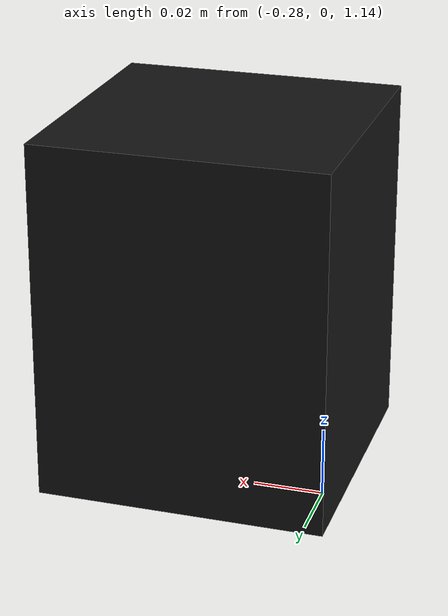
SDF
<?xml version="1.0" ?>
<sdf version="1.6">
  <model name="table_camera">
    <static>true</static>

    <link name="camera_link">
      <pose>-0.25 0 1.20 0 1.5707963 0</pose>

      <visual name="camera_body">
        <geometry>
          <box><size>0.10 0.08 0.08</size></box>
        </geometry>
        <material>
          <ambient>0.08 0.08 0.08 1</ambient>
          <diffuse>0.08 0.08 0.08 1</diffuse>
        </material>
      </visual>

      <sensor name="table_camera" type="camera">
        <always_on>true</always_on>
        <visualize>true</visualize>
        <update_rate>15</update_rate>

        <camera>
          <horizontal_fov>1.0472</horizontal_fov>
          <image>
            <width>640</width>
            <height>480</height>
            <format>R8G8B8</format>
          </image>
          <clip>
            <near>0.05</near>
            <far>5.0</far>
          </clip>
        </camera>

        <plugin
          name="gazebo_ros_camera"
          filename="libgazebo_ros_camera.so">
          <camera_name>table_camera</camera_name>
          <frame_name>table_camera_link</frame_name>
          <image_topic_name>image_raw</image_topic_name>
          <camera_info_topic_name>camera_info</camera_info_topic_name>
        </plugin>
      </sensor>
    </link>
  </model>
</sdf>
